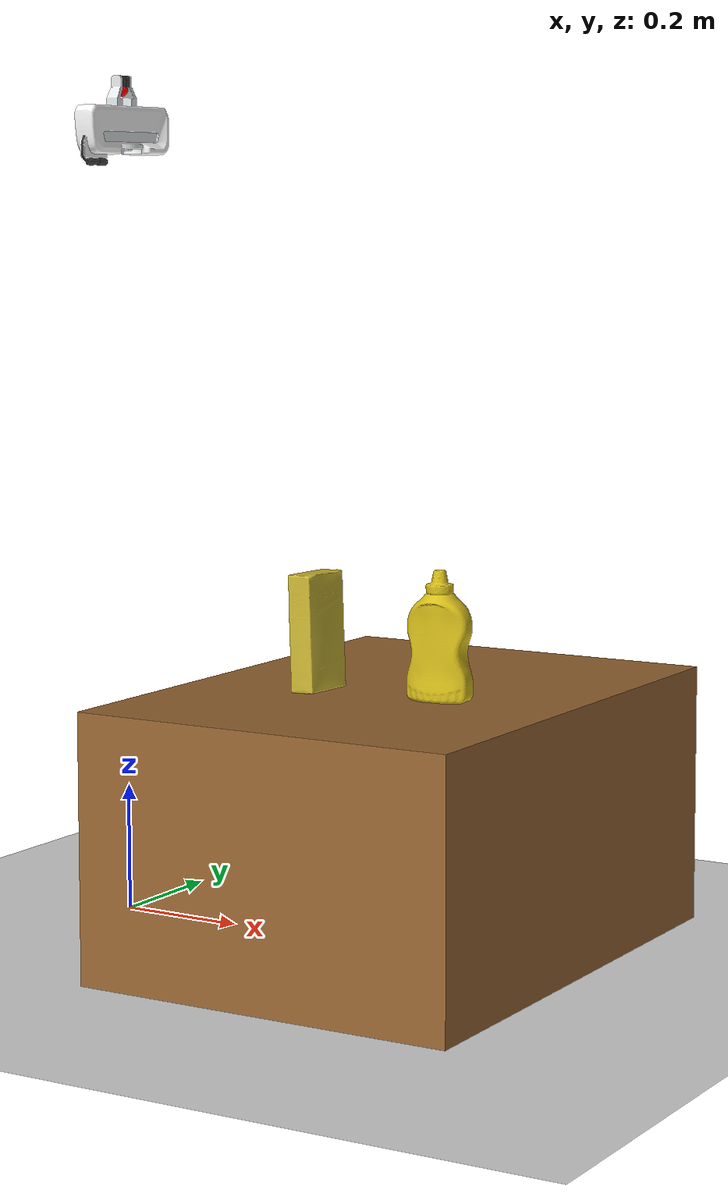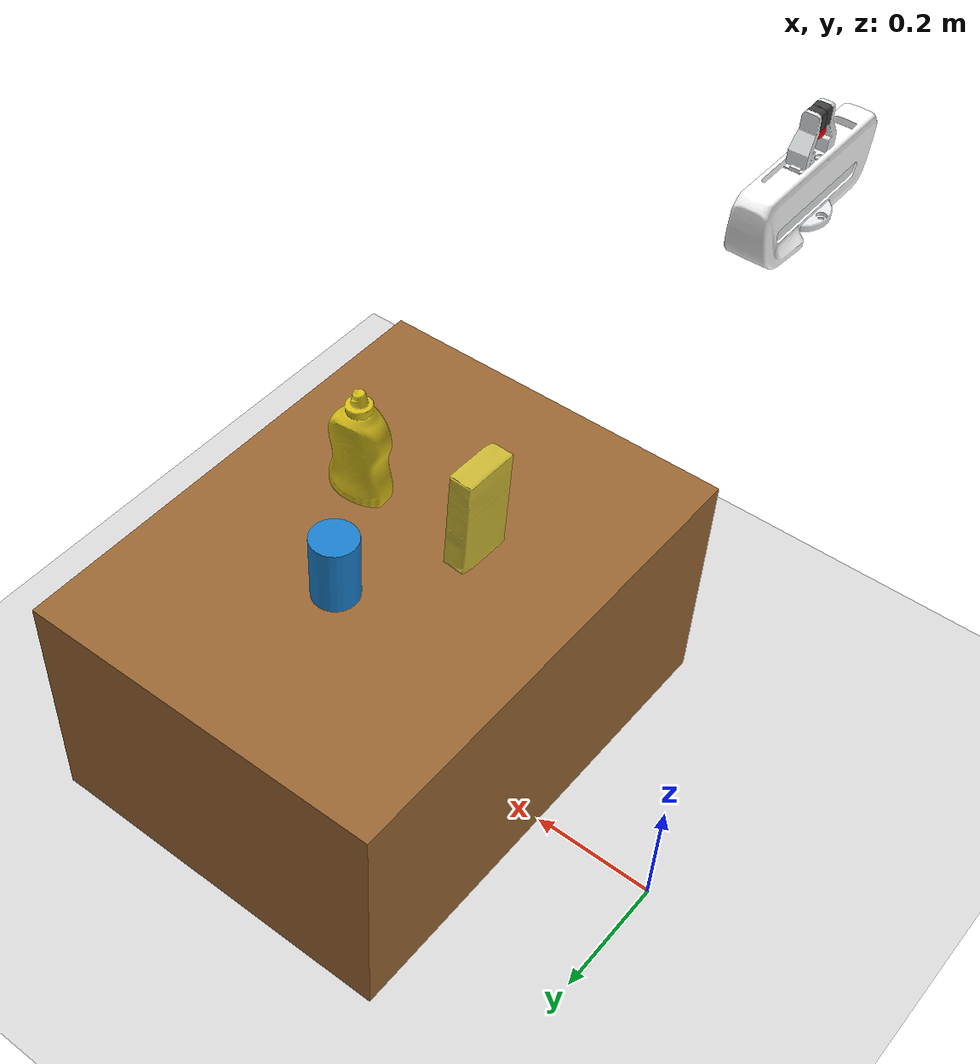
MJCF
<mujoco model="floating_gripper_scene_template">
  <compiler angle="radian" autolimits="true" balanceinertia="true"
            meshdir="/Users/bonolomasima/Desktop/Reasoning_via_Inference/mujoco_menagerie/franka_emika_panda/assets"/>
  <option gravity="0 0 -9.81" timestep="0.002" integrator="implicitfast"
          noslip_iterations="5" noslip_tolerance="1e-6"/>

  <visual>
    <global offwidth="1280" offheight="720"/>
  </visual>

  <default>
    <geom solref="0.004 1" solimp="0.98 0.99 0.001"/>
  </default>

  <default>
    <default class="panda">
      <material specular="0.5" shininess="0.25"/>
      <default class="finger">
        <joint axis="0 1 0" type="slide" range="0 0.04"/>
      </default>
      <default class="visual">
        <geom type="mesh" contype="0" conaffinity="0" group="2"/>
      </default>
      <default class="collision">
        <geom type="mesh" group="3"/>
        <default class="fingertip_pad_collision_1">
          <geom type="box" size="0.0085 0.004 0.0085" pos="0 0.0055 0.0445" friction="5 0.02 0.0002"/>
        </default>
        <default class="fingertip_pad_collision_2">
          <geom type="box" size="0.003 0.002 0.003" pos="0.0055 0.002 0.05" friction="5 0.02 0.0002"/>
        </default>
        <default class="fingertip_pad_collision_3">
          <geom type="box" size="0.003 0.002 0.003" pos="-0.0055 0.002 0.05" friction="5 0.02 0.0002"/>
        </default>
        <default class="fingertip_pad_collision_4">
          <geom type="box" size="0.003 0.002 0.0035" pos="0.0055 0.002 0.0395" friction="5 0.02 0.0002"/>
        </default>
        <default class="fingertip_pad_collision_5">
          <geom type="box" size="0.003 0.002 0.0035" pos="-0.0055 0.002 0.0395" friction="5 0.02 0.0002"/>
        </default>
      </default>
    </default>
  </default>

  <asset>
    <material class="panda" name="white"     rgba="1 1 1 1"/>
    <material class="panda" name="off_white" rgba="0.901961 0.921569 0.929412 1"/>
    <material class="panda" name="black"     rgba="0.25 0.25 0.25 1"/>

    <mesh name="hand_c" file="hand.stl"/>
    <mesh file="hand_0.obj"/>
    <mesh file="hand_1.obj"/>
    <mesh file="hand_2.obj"/>
    <mesh file="hand_3.obj"/>
    <mesh file="hand_4.obj"/>
    <mesh file="finger_0.obj"/>
    <mesh file="finger_1.obj"/>

        <mesh name="ycb_sugarbox_visual" file="/Users/bonolomasima/Desktop/Reasoning_via_Inference/assets/ycb/sugar_box/visual.obj"/>
    <mesh name="ycb_mustard_visual" file="/Users/bonolomasima/Desktop/Reasoning_via_Inference/assets/ycb/mustard_bottle/visual.obj"/>
  </asset>

  <worldbody>
    <light pos="0 0 2.5" dir="0 0 -1" directional="true"/>
    <geom name="floor" type="plane" size="2 2 0.05" rgba="0.85 0.85 0.85 1"/>

    <body name="table" pos="0.5 0 0.2">
      <geom type="box" size="0.3 0.4 0.2" rgba="0.6 0.4 0.2 1"/>
    </body>

        <body name="obj_cylinder" pos="0.5 0.11 0.455">
      <freejoint/>
      <inertial pos="0 0 0" mass="0.05" diaginertia="0.0002 0.0002 0.0001"/>
      <geom name="cup" type="cylinder" size="0.036 0.055" rgba="0.1 0.5 0.8 1.0" mass="0.05" condim="4" friction="2.5 0.01 0.0001"/>
    </body>
    <body name="obj_box" pos="0.40473720558371173 -0.055000000000000014 0.4">
      <freejoint/>
      <inertial pos="0 0 0" mass="0.06" diaginertia="0.0002 0.000167 5.66e-05"/>
      <geom name="sugarbox_target_vis" type="mesh" mesh="ycb_sugarbox_visual" rgba="0.8 0.72 0.2 1.0" contype="0" conaffinity="0" group="2"/>
      <geom name="sugarbox_target_col" type="box" pos="-0.007467 -0.016712 0.088039" size="0.024748 0.047081 0.088008" mass="0.06" condim="4" friction="2.0 0.01 0.0001" group="3" rgba="0.8 0.72 0.2 0"/>
    </body>
    <body name="obj_mustard" pos="0.5952627944162883 -0.05500000000000005 0.48397300000000004">
      <freejoint/>
      <inertial pos="0 0 0" mass="0.08" diaginertia="0.001 0.001 0.0003"/>
      <geom name="mustard_target_vis" type="mesh" mesh="ycb_mustard_visual" rgba="0.85 0.75 0.1 1.0" contype="0" conaffinity="0" group="2"/>
      <geom name="mustard_target_col" type="box" pos="0.0053 -0.0076 0.0118" size="0.0482 0.0291 0.0958" mass="0.08" condim="4" friction="2.0 0.01 0.0001" group="3" rgba="0.85 0.75 0.1 0"/>
    </body>

    <body name="hand_target" mocap="true" pos="0 0 1.2" quat="1 0 0 0">
      <geom type="sphere" size="0.005" contype="0" conaffinity="0" rgba="1 0 1 0.3"/>
    </body>

    <body name="hand" pos="0 0 1.2" quat="1 0 0 0" childclass="panda" gravcomp="1">
      <freejoint name="hand_freejoint"/>
      <inertial mass="0.73" pos="-0.01 0 0.03" diaginertia="0.001 0.0025 0.0017"/>
      <geom mesh="hand_0" material="off_white" class="visual"/>
      <geom mesh="hand_1" material="black"     class="visual"/>
      <geom mesh="hand_2" material="black"     class="visual"/>
      <geom mesh="hand_3" material="white"     class="visual"/>
      <geom mesh="hand_4" material="off_white" class="visual"/>
      <geom mesh="hand_c" class="collision"/>
      <!-- Grasp-frame marker (matches CGN's build_6d_grasp origin / the
           ACRONYM PandaGripper convention: this body's own frame IS the
           gripper base frame, no extra offset needed). -->
      <site name="ee_site" pos="0 0 0.09" size="0.01" rgba="1 0 0 1" type="sphere"/>

      <body name="left_finger" pos="0 0 0.0584">
        <inertial mass="0.015" pos="0 0 0" diaginertia="2.375e-6 2.375e-6 7.5e-7"/>
        <joint name="finger_joint1" class="finger"/>
        <geom mesh="finger_0" material="off_white" class="visual"/>
        <geom mesh="finger_1" material="black"     class="visual"/>
        <geom mesh="finger_0" class="collision"/>
        <geom class="fingertip_pad_collision_1"/>
        <geom class="fingertip_pad_collision_2"/>
        <geom class="fingertip_pad_collision_3"/>
        <geom class="fingertip_pad_collision_4"/>
        <geom class="fingertip_pad_collision_5"/>
      </body>

      <body name="right_finger" pos="0 0 0.0584" quat="0 0 0 1">
        <inertial mass="0.015" pos="0 0 0" diaginertia="2.375e-6 2.375e-6 7.5e-7"/>
        <joint name="finger_joint2" class="finger"/>
        <geom mesh="finger_0" material="off_white" class="visual"/>
        <geom mesh="finger_1" material="black"     class="visual"/>
        <geom mesh="finger_0" class="collision"/>
        <geom class="fingertip_pad_collision_1"/>
        <geom class="fingertip_pad_collision_2"/>
        <geom class="fingertip_pad_collision_3"/>
        <geom class="fingertip_pad_collision_4"/>
        <geom class="fingertip_pad_collision_5"/>
      </body>
    </body>
  </worldbody>

  <tendon>
    <fixed name="split">
      <joint joint="finger_joint1" coef="0.5"/>
      <joint joint="finger_joint2" coef="0.5"/>
    </fixed>
  </tendon>

  <equality>
    <joint joint1="finger_joint1" joint2="finger_joint2"
           solimp="0.95 0.99 0.001" solref="0.005 1"/>
    <weld body1="hand" body2="hand_target" solref="0.02 1" solimp="0.9 0.95 0.001"/>
  </equality>

  <actuator>
    <general class="panda" name="actuator8" tendon="split"
             dyntype="none" biastype="affine"
             forcerange="-70 70" ctrlrange="0 255"
             gainprm="0.31372549 0 0" biasprm="0 -2000 -100"/>
  </actuator>

  <contact>
    <exclude body1="hand" body2="left_finger"/>
    <exclude body1="hand" body2="right_finger"/>
  </contact>
</mujoco>
